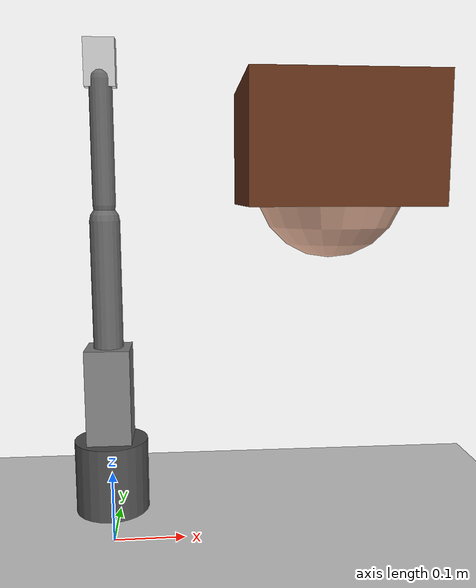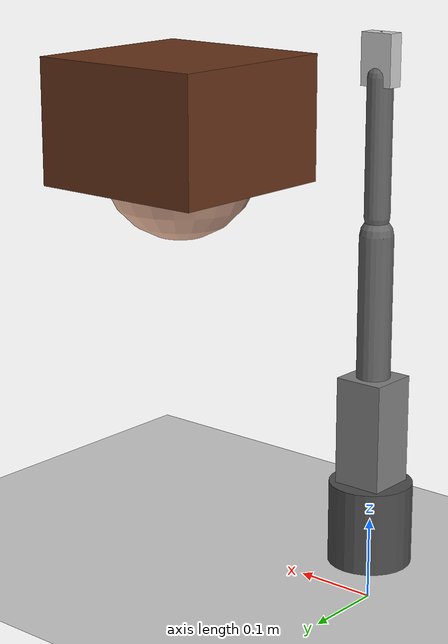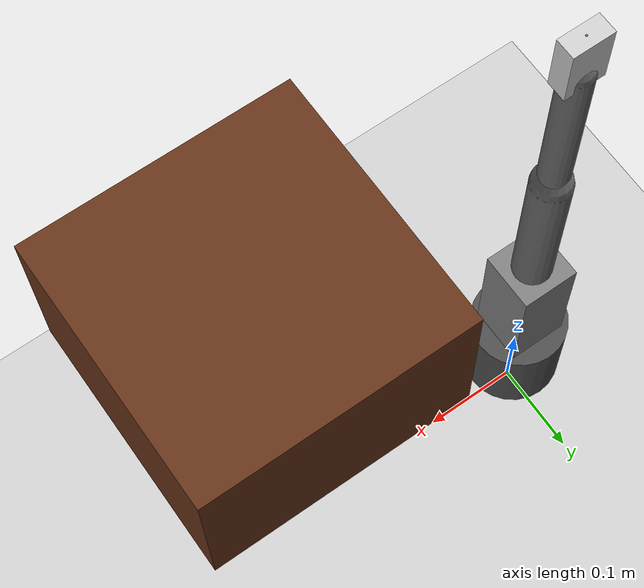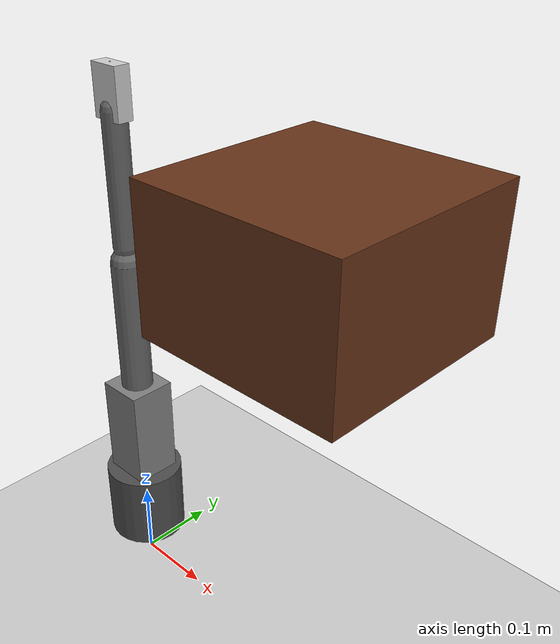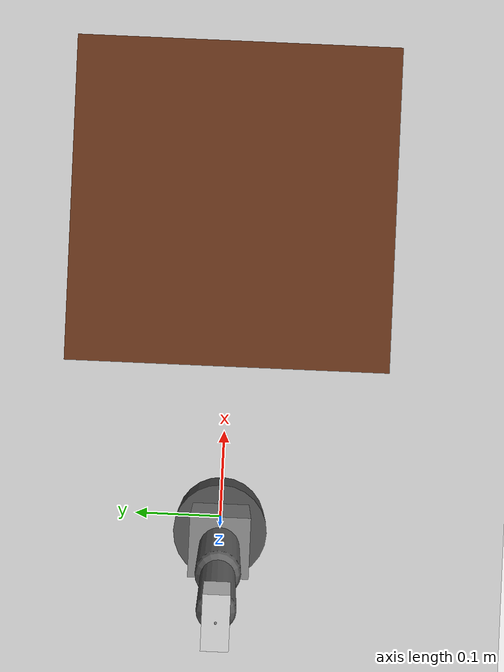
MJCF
<?xml version="1.0" ?>
<mujoco model="so101_barber">
  <compiler angle="radian" autolimits="true"/>

  <option timestep="0.001" integrator="RK4"/>

  <default>
    <default class="so101">
      <joint frictionloss="0.1" armature="0.005" damping="1"/>
      <position kp="10" dampratio="1"/>
      <default class="visual">
        <geom type="mesh" contype="0" conaffinity="0" group="2"/>
      </default>
      <default class="collision">
        <geom group="3"/>
      </default>
    </default>
  </default>

  <asset>
    <material name="hair" rgba="0.4 0.2 0.1 1"/>
    <material name="skin" rgba="0.9 0.7 0.6 1"/>
  </asset>

  <worldbody>
    <!-- Ground -->
    <geom name="floor" type="plane" size="2 2 0.1" rgba="0.8 0.8 0.8 1"/>

    <!-- Customer head with hair -->
    <body name="customer" pos="0.3 0 0.5">
      <geom name="head" type="sphere" size="0.1" material="skin"/>
      <geom name="hair" type="box" size="0.12 0.12 0.08" pos="0 0 0.05" material="hair"/>
    </body>

    <!-- Simple robot arm (simplified SO-101) -->
    <body name="base" pos="0 0 0.1">
      <geom name="base_geom" type="cylinder" size="0.05 0.05" rgba="0.3 0.3 0.3 1"/>
      <joint name="base_joint" type="hinge" axis="0 0 1" range="-3.14 3.14"/>

      <body name="shoulder" pos="0 0 0.1">
        <geom name="shoulder_geom" type="box" size="0.03 0.03 0.08" rgba="0.5 0.5 0.5 1"/>
        <joint name="shoulder_joint" type="hinge" axis="0 1 0" range="-1.57 1.57"/>

        <body name="upper_arm" pos="0 0 0.15">
          <geom name="upper_arm_geom" type="capsule" size="0.02 0.1" rgba="0.4 0.4 0.4 1"/>
          <joint name="elbow_joint" type="hinge" axis="0 1 0" range="-2.0 2.0"/>

          <body name="forearm" pos="0 0 0.2">
            <geom name="forearm_geom" type="capsule" size="0.015 0.08" rgba="0.4 0.4 0.4 1"/>
            <joint name="wrist_joint" type="hinge" axis="1 0 0" range="-1.57 1.57"/>

            <!-- Scissors/clipper end effector -->
            <body name="end_effector" pos="0 0 0.1">
              <geom name="clipper" type="box" size="0.02 0.01 0.03" rgba="0.8 0.8 0.8 1"/>
              <site name="blade" pos="0 0 0.03" size="0.001"/>
            </body>
          </body>
        </body>
      </body>
    </body>
  </worldbody>

  <sensor>
    <touch name="cut_hair" site="blade"/>
  </sensor>

  <actuator>
    <position name="base_actuator" joint="base_joint" kp="10"/>
    <position name="shoulder_actuator" joint="shoulder_joint" kp="10"/>
    <position name="elbow_actuator" joint="elbow_joint" kp="10"/>
    <position name="wrist_actuator" joint="wrist_joint" kp="10"/>
  </actuator>
</mujoco>
